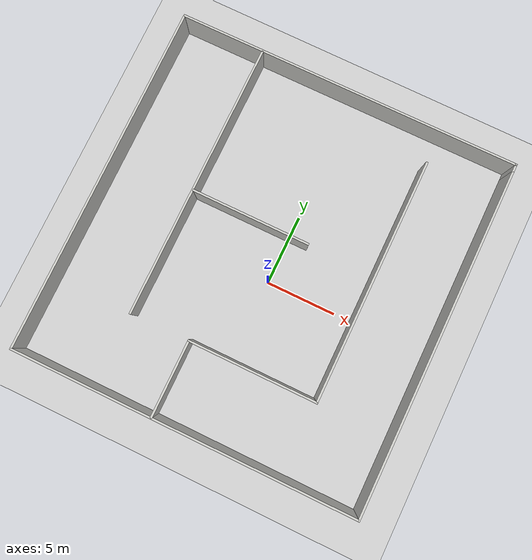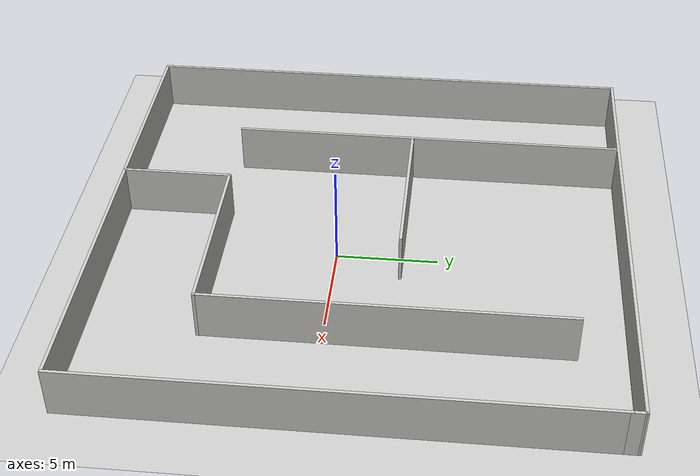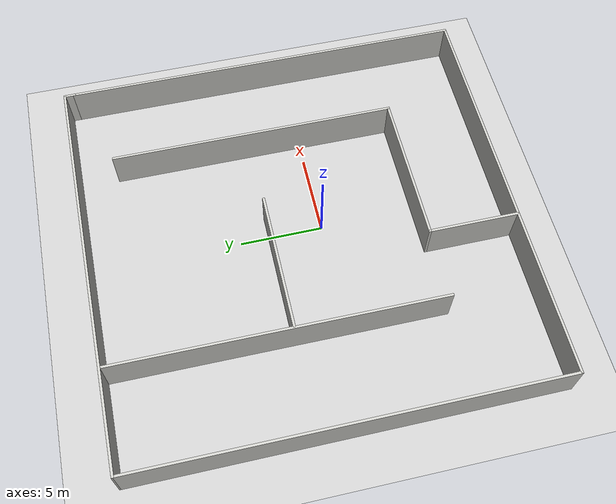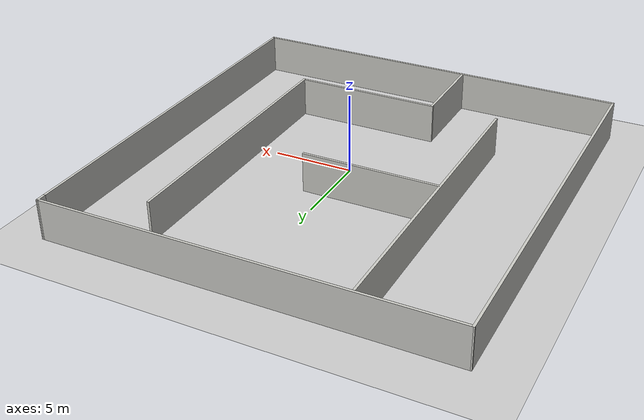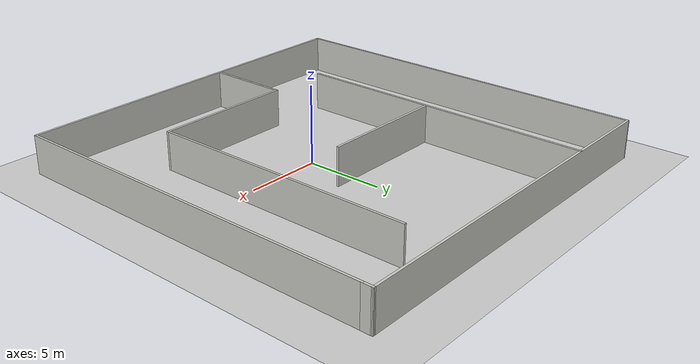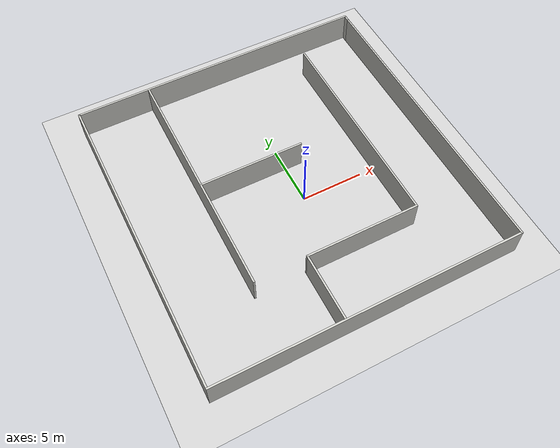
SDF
<sdf version="1.6">
 <world name="default">
  <light name="sun" type="directional">
   <pose>0 0 10 0 -0 0</pose>
   <diffuse>0.8 0.8 0.8 1</diffuse>
   <specular>0.2 0.2 0.2 1</specular>
   <attenuation>
    <range>1000</range>
    <constant>0.9</constant>
    <linear>0.01</linear>
    <quadratic>0.001</quadratic>
   </attenuation>
   <direction>-0.5 0.1 -0.9</direction>
  </light>
  <gravity>0 0 -9.8</gravity>
  <magnetic_field>6e-06 2.3e-05 -4.2e-05</magnetic_field>
  <atmosphere type="adiabatic"/>
  <physics name="default_physics" default="0" type="ode">
   <max_step_size>0.001</max_step_size>
   <real_time_factor>1</real_time_factor>
   <real_time_update_rate>1000</real_time_update_rate>
  </physics>
  <scene><ambient>0.4 0.4 0.4 1</ambient><background>0.7 0.7 0.7 1</background><shadows>1</shadows></scene>
  <spherical_coordinates>
   <surface_model>EARTH_WGS84</surface_model>
   <latitude_deg>0</latitude_deg>
   <longitude_deg>0</longitude_deg>
   <elevation>0</elevation>
   <heading_deg>0</heading_deg>
  </spherical_coordinates>
  <model name="Untitled">
   <pose>-0.7013 1.44395 0 0 -0 0</pose>
   <link name="Wall_47">
    <collision name="Wall_47_Collision">
     <geometry><box><size>25.25 0.15 2.5</size></box></geometry>
     <pose>0 0 1.25 0 -0 0</pose>
    </collision>
    <visual name="Wall_47_Visual">
     <pose>0 0 1.25 0 -0 0</pose>
     <geometry><box><size>25.25 0.15 2.5</size></box></geometry>
     <material>
      <script><uri>file://media/materials/scripts/gazebo.material</uri><name>Gazebo/CeilingTiled</name></script>
      <ambient>1 0.764706 0.305882 1</ambient>
     </material>
     <meta><layer>0</layer></meta>
    </visual>
    <pose>-12.3 -0.050151 0 0 0 -1.5708</pose>
   </link>
   <link name="Wall_48">
    <collision name="Wall_48_Collision">
     <geometry><box><size>24.75 0.15 2.5</size></box></geometry>
     <pose>0 0 1.25 0 -0 0</pose>
    </collision>
    <visual name="Wall_48_Visual">
     <pose>0 0 1.25 0 -0 0</pose>
     <geometry><box><size>24.75 0.15 2.5</size></box></geometry>
     <material>
      <script><uri>file://media/materials/scripts/gazebo.material</uri><name>Gazebo/CeilingTiled</name></script>
      <ambient>1 0.764706 0.305882 1</ambient>
     </material>
     <meta><layer>0</layer></meta>
    </visual>
    <pose>0 -12.6002 0 0 -0 0</pose>
   </link>
   <link name="Wall_49">
    <collision name="Wall_49_Collision">
     <geometry><box><size>24.75 0.15 2.5</size></box></geometry>
     <pose>0 0 1.25 0 -0 0</pose>
    </collision>
    <visual name="Wall_49_Visual">
     <pose>0 0 1.25 0 -0 0</pose>
     <geometry><box><size>24.75 0.15 2.5</size></box></geometry>
     <material>
      <script><uri>file://media/materials/scripts/gazebo.material</uri><name>Gazebo/CeilingTiled</name></script>
      <ambient>1 0.764706 0.305882 1</ambient>
     </material>
     <meta><layer>0</layer></meta>
    </visual>
    <pose>12.3 -0.300151 0 0 -0 1.5708</pose>
   </link>
   <link name="Wall_50">
    <collision name="Wall_50_Collision">
     <geometry><box><size>0.75 0.15 2.5</size></box></geometry>
     <pose>0 0 1.25 0 -0 0</pose>
    </collision>
    <visual name="Wall_50_Visual">
     <pose>0 0 1.25 0 -0 0</pose>
     <geometry><box><size>0.75 0.15 2.5</size></box></geometry>
     <material>
      <script><uri>file://media/materials/scripts/gazebo.material</uri><name>Gazebo/CeilingTiled</name></script>
      <ambient>1 0.764706 0.305882 1</ambient>
     </material>
     <meta><layer>0</layer></meta>
    </visual>
    <pose>12.3 12.2998 0 0 -0 1.5708</pose>
   </link>
   <link name="Wall_51">
    <collision name="Wall_51_Collision">
     <geometry><box><size>24.7502 0.15 2.5</size></box></geometry>
     <pose>0 0 1.25 0 -0 0</pose>
    </collision>
    <visual name="Wall_51_Visual">
     <pose>0 0 1.25 0 -0 0</pose>
     <geometry><box><size>24.7502 0.15 2.5</size></box></geometry>
     <material>
      <script><uri>file://media/materials/scripts/gazebo.material</uri><name>Gazebo/CeilingTiled</name></script>
      <ambient>1 0.764706 0.305882 1</ambient>
     </material>
     <meta><layer>0</layer></meta>
    </visual>
    <pose>0 12.5498 0 0 0 -3.13753</pose>
   </link>
   <link name="Wall_53">
    <collision name="Wall_53_Collision">
     <geometry><box><size>19.894 0.15 2.5</size></box></geometry>
     <pose>0 0 1.25 0 -0 0</pose>
    </collision>
    <visual name="Wall_53_Visual">
     <pose>0 0 1.25 0 -0 0</pose>
     <geometry><box><size>19.894 0.15 2.5</size></box></geometry>
     <material>
      <script><uri>file://media/materials/scripts/gazebo.material</uri><name>Gazebo/CeilingTiled</name></script>
      <ambient>1 0.764706 0.305882 1</ambient>
     </material>
     <meta><layer>0</layer></meta>
    </visual>
    <pose>-6.38797 2.62787 0 0 0 -1.57351</pose>
   </link>
   <link name="Wall_56">
    <collision name="Wall_56_Collision">
     <geometry><box><size>8.5 0.15 2.5</size></box></geometry>
     <pose>0 0 1.25 0 -0 0</pose>
    </collision>
    <visual name="Wall_56_Visual">
     <pose>0 0 1.25 0 -0 0</pose>
     <geometry><box><size>8.5 0.15 2.5</size></box></geometry>
     <material>
      <script><uri>file://media/materials/scripts/gazebo.material</uri><name>Gazebo/CeilingTiled</name></script>
      <ambient>1 0.764706 0.305882 1</ambient>
     </material>
     <meta><layer>0</layer></meta>
    </visual>
    <pose>-2.13272 1.79935 0 0 -0 0</pose>
   </link>
   <link name="Wall_59">
    <collision name="Wall_59_Collision">
     <geometry><box><size>17.5 0.15 2.5</size></box></geometry>
     <pose>0 0 1.25 0 -0 0</pose>
    </collision>
    <visual name="Wall_59_Visual">
     <pose>0 0 1.25 0 -0 0</pose>
     <geometry><box><size>17.5 0.15 2.5</size></box></geometry>
     <material>
      <script><uri>file://media/materials/scripts/gazebo.material</uri><name>Gazebo/CeilingTiled</name></script>
      <ambient>1 0.764706 0.305882 1</ambient>
     </material>
     <meta><layer>0</layer></meta>
    </visual>
    <pose>6.89228 1.47435 0 0 0 -1.5708</pose>
   </link>
   <link name="Wall_60">
    <collision name="Wall_60_Collision">
     <geometry><box><size>9.25 0.15 2.5</size></box></geometry>
     <pose>0 0 1.25 0 -0 0</pose>
    </collision>
    <visual name="Wall_60_Visual">
     <pose>0 0 1.25 0 -0 0</pose>
     <geometry><box><size>9.25 0.15 2.5</size></box></geometry>
     <material>
      <script><uri>file://media/materials/scripts/gazebo.material</uri><name>Gazebo/CeilingTiled</name></script>
      <ambient>1 0.764706 0.305882 1</ambient>
     </material>
     <meta><layer>0</layer></meta>
    </visual>
    <pose>2.34228 -7.20065 0 0 -0 3.14159</pose>
   </link>
   <link name="Wall_62">
    <collision name="Wall_62_Collision">
     <geometry><box><size>5.5 0.15 2.5</size></box></geometry>
     <pose>0 0 1.25 0 -0 0</pose>
    </collision>
    <visual name="Wall_62_Visual">
     <pose>0 0 1.25 0 -0 0</pose>
     <geometry><box><size>5.5 0.15 2.5</size></box></geometry>
     <material>
      <script><uri>file://media/materials/scripts/gazebo.material</uri><name>Gazebo/CeilingTiled</name></script>
      <ambient>1 0.764706 0.305882 1</ambient>
     </material>
     <meta><layer>0</layer></meta>
    </visual>
    <pose>-2.20772 -9.87565 0 0 0 -1.5708</pose>
   </link>
   <static>1</static>
  </model>
  <light name="sun_clone" type="directional">
   <pose>-0.001 0.039175 10 0 -0 0</pose>
   <diffuse>0.8 0.8 0.8 1</diffuse>
   <specular>0.2 0.2 0.2 1</specular>
   <direction>-0.483368 0.096674 -0.870063</direction>
   <attenuation>
    <range>1000</range>
    <constant>0.9</constant>
    <linear>0.01</linear>
    <quadratic>0.001</quadratic>
   </attenuation>
  </light>
  <light name="sun_clone_0" type="directional">
   <pose>0.059587 -0.031866 10 0 -0 0</pose>
   <diffuse>0.8 0.8 0.8 1</diffuse>
   <specular>0.2 0.2 0.2 1</specular>
   <direction>-0.483368 0.096674 -0.870063</direction>
   <attenuation>
    <range>1000</range>
    <constant>0.9</constant>
    <linear>0.01</linear>
    <quadratic>0.001</quadratic>
   </attenuation>
  </light>
  <light name="sun_clone_1" type="directional">
   <pose>0.044976 0.055103 10 0 -0 0</pose>
   <diffuse>0.8 0.8 0.8 1</diffuse>
   <specular>0.2 0.2 0.2 1</specular>
   <direction>-0.483368 0.096674 -0.870063</direction>
   <attenuation>
    <range>1000</range>
    <constant>0.9</constant>
    <linear>0.01</linear>
    <quadratic>0.001</quadratic>
   </attenuation>
  </light>
  <model name="my_ground_plane">
   <static>1</static>
   <link name="link">
    <collision name="collision">
     <geometry><plane><normal>0 0 1</normal><size>100 100</size></plane></geometry>
     <surface><friction><ode><mu>100</mu><mu2>50</mu2></ode></friction></surface>
    </collision>
    <visual name="visual">
     <cast_shadows>0</cast_shadows>
     <geometry><plane><normal>0 0 1</normal><size>100 100</size></plane></geometry>
     <material>
      <script>
       <uri>model://my_ground_plane/materials/scripts</uri>
       <uri>model://my_ground_plane/materials/textures/</uri>
       <name>MyGroundPlane/Image</name>
      </script>
     </material>
    </visual>
   </link>
   <pose>-0.701025 0.619919 0 0 -0 0</pose>
  </model>
 </world>
</sdf>
